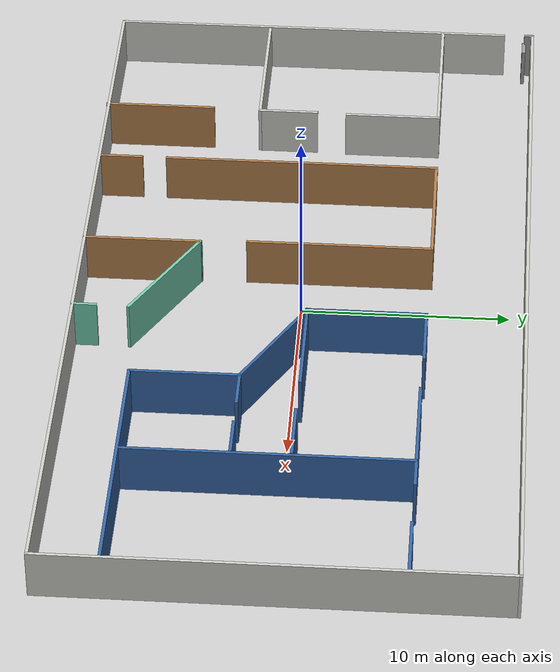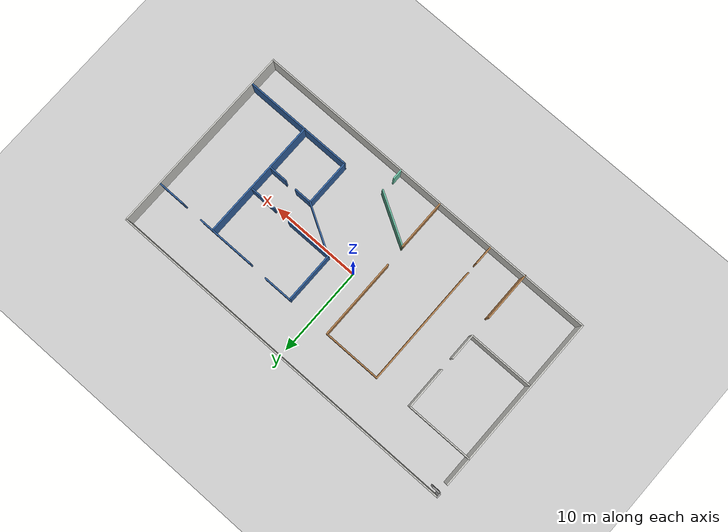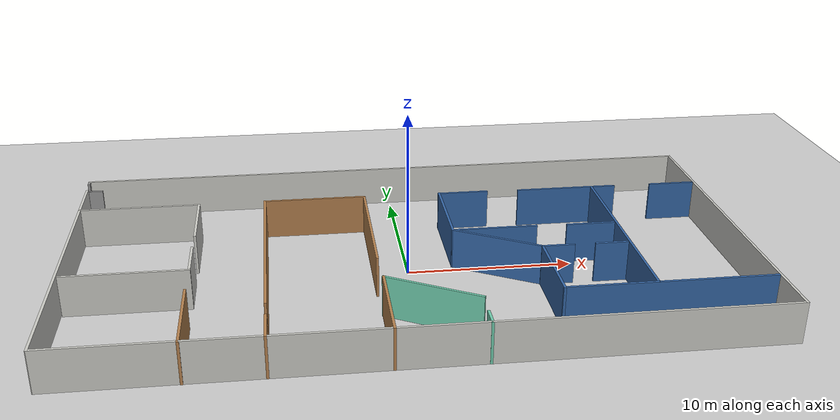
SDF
<sdf version="1.7">
 <world name="default">
  <light name="sun" type="directional">
   <pose>0 0 10 0 -0 0</pose>
   <diffuse>0.8 0.8 0.8 1</diffuse>
   <specular>0.2 0.2 0.2 1</specular>
   <attenuation>
    <range>1000</range>
    <constant>0.9</constant>
    <linear>0.01</linear>
    <quadratic>0.001</quadratic>
   </attenuation>
   <direction>-0.5 0.1 -0.9</direction>
   <spot><inner_angle>0</inner_angle><outer_angle>0</outer_angle><falloff>0</falloff></spot>
  </light>
  <model name="ground_plane">
   <static>1</static>
   <link name="link">
    <collision name="collision">
     <geometry><plane><normal>0 0 1</normal><size>100 100</size></plane></geometry>
     <surface><friction><ode><mu>100</mu><mu2>50</mu2></ode></friction></surface>
    </collision>
    <visual name="visual">
     <cast_shadows>0</cast_shadows>
     <geometry><plane><normal>0 0 1</normal><size>100 100</size></plane></geometry>
     <material>
      <script><uri>file://media/materials/scripts/gazebo.material</uri><name>Gazebo/Grey</name></script>
     </material>
    </visual>
   </link>
  </model>
  <gravity>0 0 -9.8</gravity>
  <magnetic_field>6e-06 2.3e-05 -4.2e-05</magnetic_field>
  <atmosphere type="adiabatic"/>
  <physics type="ode">
   <max_step_size>0.001</max_step_size>
   <real_time_factor>1</real_time_factor>
   <real_time_update_rate>1000</real_time_update_rate>
  </physics>
  <scene><ambient>0.4 0.4 0.4 1</ambient><background>0.7 0.7 0.7 1</background><shadows>1</shadows></scene>
  <spherical_coordinates>
   <surface_model>EARTH_WGS84</surface_model>
   <latitude_deg>0</latitude_deg>
   <longitude_deg>0</longitude_deg>
   <elevation>0</elevation>
   <heading_deg>0</heading_deg>
  </spherical_coordinates>
  <model name="shub">
   <pose>-0.04794 0.053458 0 0 -0 0</pose>
   <link name="Door_0">
    <collision name="Door_0_Collision">
     <geometry><box><size>0.9 0.17 2</size></box></geometry>
     <pose>0 0 1 0 -0 0</pose>
    </collision>
    <visual name="Door_0_Visual">
     <pose>0 0 1 0 -0 0</pose>
     <geometry><box><size>0.9 0.17 2</size></box></geometry>
     <material>
      <script><uri>file://media/materials/scripts/gazebo.material</uri><name>Gazebo/Grey</name></script>
     </material>
    </visual>
    <pose>-19.5315 10.2669 0 0 -0 0</pose>
   </link>
   <link name="Wall_0">
    <collision name="Wall_0_Collision">
     <geometry><box><size>20 0.15 2.5</size></box></geometry>
     <pose>0 0 1.25 0 -0 0</pose>
    </collision>
    <visual name="Wall_0_Visual">
     <pose>0 0 1.25 0 -0 0</pose>
     <geometry><box><size>20 0.15 2.5</size></box></geometry>
     <material>
      <script><uri>file://media/materials/scripts/gazebo.material</uri><name>Gazebo/CeilingTiled</name></script>
      <ambient>1 1 1 1</ambient>
     </material>
     <meta><layer>0</layer></meta>
    </visual>
    <pose>-19.8898 -0.728475 0 0 -0 -1.5708</pose>
   </link>
   <link name="Wall_1">
    <collision name="Wall_1_Collision">
     <geometry><box><size>39.9296 0.15 2.5</size></box></geometry>
     <pose>0 0 1.25 0 -0 0</pose>
    </collision>
    <visual name="Wall_1_Visual">
     <pose>0 0 1.25 0 -0 0</pose>
     <geometry><box><size>39.9296 0.15 2.5</size></box></geometry>
     <material>
      <script><uri>file://media/materials/scripts/gazebo.material</uri><name>Gazebo/CeilingTiled</name></script>
      <ambient>1 1 1 1</ambient>
     </material>
     <meta><layer>0</layer></meta>
    </visual>
    <pose>0.035178 -10.6535 0 0 -0 0</pose>
   </link>
   <link name="Wall_13">
    <collision name="Wall_13_Collision">
     <geometry><box><size>7.5 0.15 2.5</size></box></geometry>
     <pose>0 0 1.25 0 -0 0</pose>
    </collision>
    <visual name="Wall_13_Visual">
     <pose>0 0 1.25 0 -0 0</pose>
     <geometry><box><size>7.5 0.15 2.5</size></box></geometry>
     <material>
      <script><uri>file://media/materials/scripts/gazebo.material</uri><name>Gazebo/CeilingTiled</name></script>
      <ambient>0.996078 0.47451 0.0196078 1</ambient>
     </material>
     <meta><layer>0</layer></meta>
    </visual>
    <pose>-16.1979 6.05021 0 0 -0 0</pose>
   </link>
   <link name="Wall_14">
    <collision name="Wall_14_Collision">
     <geometry><box><size>4.75 0.15 2.5</size></box></geometry>
     <pose>0 0 1.25 0 -0 0</pose>
    </collision>
    <visual name="Wall_14_Visual">
     <pose>0 0 1.25 0 -0 0</pose>
     <geometry><box><size>4.75 0.15 2.5</size></box></geometry>
     <material>
      <script><uri>file://media/materials/scripts/gazebo.material</uri><name>Gazebo/CeilingTiled</name></script>
      <ambient>0.996078 0.47451 0.0196078 1</ambient>
     </material>
     <meta><layer>0</layer></meta>
    </visual>
    <pose>-12.5229 3.75021 0 0 -0 -1.5708</pose>
   </link>
   <link name="Wall_2">
    <collision name="Wall_2_Collision">
     <geometry><box><size>21.5 0.15 2.5</size></box></geometry>
     <pose>0 0 1.25 0 -0 0</pose>
    </collision>
    <visual name="Wall_2_Visual">
     <pose>0 0 1.25 0 -0 0</pose>
     <geometry><box><size>21.5 0.15 2.5</size></box></geometry>
     <material>
      <script><uri>file://media/materials/scripts/gazebo.material</uri><name>Gazebo/CeilingTiled</name></script>
      <ambient>1 1 1 1</ambient>
     </material>
     <meta><layer>0</layer></meta>
    </visual>
    <pose>19.925 0.021525 0 0 -0 1.5708</pose>
   </link>
   <link name="Wall_23">
    <collision name="Wall_23_Collision">
     <geometry><box><size>3 0.15 2.5</size></box></geometry>
     <pose>0 0 1.25 0 -0 0</pose>
    </collision>
    <visual name="Wall_23_Visual">
     <pose>0 0 1.25 0 -0 0</pose>
     <geometry><box><size>3 0.15 2.5</size></box></geometry>
     <material>
      <script><uri>file://media/materials/scripts/gazebo.material</uri><name>Gazebo/CeilingTiled</name></script>
      <ambient>0.996078 0.47451 0.0196078 1</ambient>
     </material>
     <meta><layer>0</layer></meta>
    </visual>
    <pose>-12.5911 -1.53536 0 0 -0 -1.5708</pose>
   </link>
   <link name="Wall_24">
    <collision name="Wall_24_Collision">
     <geometry><box><size>7.25 0.15 2.5</size></box></geometry>
     <pose>0 0 1.25 0 -0 0</pose>
    </collision>
    <visual name="Wall_24_Visual">
     <pose>0 0 1.25 0 -0 0</pose>
     <geometry><box><size>7.25 0.15 2.5</size></box></geometry>
     <material>
      <script><uri>file://media/materials/scripts/gazebo.material</uri><name>Gazebo/CeilingTiled</name></script>
      <ambient>0.996078 0.47451 0.0196078 1</ambient>
     </material>
     <meta><layer>0</layer></meta>
    </visual>
    <pose>-16.1411 -2.96036 0 0 -0 3.14159</pose>
   </link>
   <link name="Wall_26">
    <collision name="Wall_26_Collision">
     <geometry><box><size>5.5 0.15 2.5</size></box></geometry>
     <pose>0 0 1.25 0 -0 0</pose>
    </collision>
    <visual name="Wall_26_Visual">
     <pose>0 0 1.25 0 -0 0</pose>
     <geometry><box><size>5.5 0.15 2.5</size></box></geometry>
     <material>
      <script><uri>file://media/materials/scripts/gazebo.material</uri><name>Gazebo/Wood</name></script>
      <ambient>1 1 1 1</ambient>
     </material>
     <meta><layer>0</layer></meta>
    </visual>
    <pose>-12.666 -8.02153 0 0 -0 1.5708</pose>
   </link>
   <link name="Wall_28">
    <collision name="Wall_28_Collision">
     <geometry><box><size>2.25 0.15 2.5</size></box></geometry>
     <pose>0 0 1.25 0 -0 0</pose>
    </collision>
    <visual name="Wall_28_Visual">
     <pose>0 0 1.25 0 -0 0</pose>
     <geometry><box><size>2.25 0.15 2.5</size></box></geometry>
     <material>
      <script><uri>file://media/materials/scripts/gazebo.material</uri><name>Gazebo/Wood</name></script>
      <ambient>1 1 1 1</ambient>
     </material>
     <meta><layer>0</layer></meta>
    </visual>
    <pose>-8.37772 -9.60607 0 0 -0 1.5708</pose>
   </link>
   <link name="Wall_3">
    <collision name="Wall_3_Collision">
     <geometry><box><size>40 0.15 2.5</size></box></geometry>
     <pose>0 0 1.25 0 -0 0</pose>
    </collision>
    <visual name="Wall_3_Visual">
     <pose>0 0 1.25 0 -0 0</pose>
     <geometry><box><size>40 0.15 2.5</size></box></geometry>
     <material>
      <script><uri>file://media/materials/scripts/gazebo.material</uri><name>Gazebo/CeilingTiled</name></script>
      <ambient>1 1 1 1</ambient>
     </material>
     <meta><layer>0</layer></meta>
    </visual>
    <pose>-0 10.6965 0 0 -0 3.14159</pose>
   </link>
   <link name="Wall_30">
    <collision name="Wall_30_Collision">
     <geometry><box><size>13.5 0.15 2.5</size></box></geometry>
     <pose>0 0 1.25 0 -0 0</pose>
    </collision>
    <visual name="Wall_30_Visual">
     <pose>0 0 1.25 0 -0 0</pose>
     <geometry><box><size>13.5 0.15 2.5</size></box></geometry>
     <material>
      <script><uri>file://media/materials/scripts/gazebo.material</uri><name>Gazebo/Wood</name></script>
      <ambient>1 1 1 1</ambient>
     </material>
     <meta><layer>0</layer></meta>
    </visual>
    <pose>-8.37772 -0.582802 0 0 -0 1.5708</pose>
   </link>
   <link name="Wall_31">
    <collision name="Wall_31_Collision">
     <geometry><box><size>6.5 0.15 2.5</size></box></geometry>
     <pose>0 0 1.25 0 -0 0</pose>
    </collision>
    <visual name="Wall_31_Visual">
     <pose>0 0 1.25 0 -0 0</pose>
     <geometry><box><size>6.5 0.15 2.5</size></box></geometry>
     <material>
      <script><uri>file://media/materials/scripts/gazebo.material</uri><name>Gazebo/Wood</name></script>
      <ambient>1 1 1 1</ambient>
     </material>
     <meta><layer>0</layer></meta>
    </visual>
    <pose>-5.20272 6.0922 0 0 -0 0</pose>
   </link>
   <link name="Wall_32">
    <collision name="Wall_32_Collision">
     <geometry><box><size>9 0.15 2.5</size></box></geometry>
     <pose>0 0 1.25 0 -0 0</pose>
    </collision>
    <visual name="Wall_32_Visual">
     <pose>0 0 1.25 0 -0 0</pose>
     <geometry><box><size>9 0.15 2.5</size></box></geometry>
     <material>
      <script><uri>file://media/materials/scripts/gazebo.material</uri><name>Gazebo/Wood</name></script>
      <ambient>1 1 1 1</ambient>
     </material>
     <meta><layer>0</layer></meta>
    </visual>
    <pose>-2.02773 1.6672 0 0 -0 -1.5708</pose>
   </link>
   <link name="Wall_34">
    <collision name="Wall_34_Collision">
     <geometry><box><size>5.75 0.15 2.5</size></box></geometry>
     <pose>0 0 1.25 0 -0 0</pose>
    </collision>
    <visual name="Wall_34_Visual">
     <pose>0 0 1.25 0 -0 0</pose>
     <geometry><box><size>5.75 0.15 2.5</size></box></geometry>
     <material>
      <script><uri>file://media/materials/scripts/gazebo.material</uri><name>Gazebo/Wood</name></script>
      <ambient>0.203922 0.396078 0.643137 1</ambient>
     </material>
     <meta><layer>0</layer></meta>
    </visual>
    <pose>-1.90483 -7.85607 0 0 -0 1.5708</pose>
   </link>
   <link name="Wall_35">
    <collision name="Wall_35_Collision">
     <geometry><box><size>6 0.15 2.5</size></box></geometry>
     <pose>0 0 1.25 0 -0 0</pose>
    </collision>
    <visual name="Wall_35_Visual">
     <pose>0 0 1.25 0 -0 0</pose>
     <geometry><box><size>6 0.15 2.5</size></box></geometry>
     <material>
      <script><uri>file://media/materials/scripts/gazebo.material</uri><name>Gazebo/Grey</name></script>
      <ambient>0.435294 0.796078 0.67451 1</ambient>
     </material>
     <meta><layer>0</layer></meta>
    </visual>
    <pose>0.628292 -6.51857 0 0 -0 -0.523599</pose>
   </link>
   <link name="Wall_37">
    <collision name="Wall_37_Collision">
     <geometry><box><size>1.25 0.15 2.5</size></box></geometry>
     <pose>0 0 1.25 0 -0 0</pose>
    </collision>
    <visual name="Wall_37_Visual">
     <pose>0 0 1.25 0 -0 0</pose>
     <geometry><box><size>1.25 0.15 2.5</size></box></geometry>
     <material>
      <script><uri>file://media/materials/scripts/gazebo.material</uri><name>Gazebo/Grey</name></script>
      <ambient>0.435294 0.796078 0.67451 1</ambient>
     </material>
     <meta><layer>0</layer></meta>
    </visual>
    <pose>3.11166 -10.1138 0 0 -0 -1.5708</pose>
   </link>
   <link name="Wall_4">
    <collision name="Wall_4_Collision">
     <geometry><box><size>0.5 0.15 2.5</size></box></geometry>
     <pose>0 0 1.25 0 -0 0</pose>
    </collision>
    <visual name="Wall_4_Visual">
     <pose>0 0 1.25 0 -0 0</pose>
     <geometry><box><size>0.5 0.15 2.5</size></box></geometry>
     <material>
      <script><uri>file://media/materials/scripts/gazebo.material</uri><name>Gazebo/Grey</name></script>
      <ambient>1 1 1 1</ambient>
     </material>
     <meta><layer>0</layer></meta>
    </visual>
    <pose>-19.925 10.5215 0 0 -0 -1.5708</pose>
   </link>
   <link name="Wall_42">
    <collision name="Wall_42_Collision">
     <geometry><box><size>5.75 0.15 2.5</size></box></geometry>
     <pose>0 0 1.25 0 -0 0</pose>
    </collision>
    <visual name="Wall_42_Visual">
     <pose>0 0 1.25 0 -0 0</pose>
     <geometry><box><size>5.75 0.15 2.5</size></box></geometry>
     <material>
      <script><uri>file://media/materials/scripts/gazebo.material</uri><name>Gazebo/Grey</name></script>
      <ambient>0.203922 0.396078 0.643137 1</ambient>
     </material>
     <meta><layer>0</layer></meta>
    </visual>
    <pose>2.84118 3.21163 0 0 -0 -1.5708</pose>
   </link>
   <link name="Wall_43">
    <collision name="Wall_43_Collision">
     <geometry><box><size>5.75 0.15 2.5</size></box></geometry>
     <pose>0 0 1.25 0 -0 0</pose>
    </collision>
    <visual name="Wall_43_Visual">
     <pose>0 0 1.25 0 -0 0</pose>
     <geometry><box><size>5.75 0.15 2.5</size></box></geometry>
     <material>
      <script><uri>file://media/materials/scripts/gazebo.material</uri><name>Gazebo/Grey</name></script>
      <ambient>0.203922 0.396078 0.643137 1</ambient>
     </material>
     <meta><layer>0</layer></meta>
    </visual>
    <pose>5.26605 -0.988372 0 0 -0 -0.523599</pose>
   </link>
   <link name="Wall_44">
    <collision name="Wall_44_Collision">
     <geometry><box><size>5.25 0.15 2.5</size></box></geometry>
     <pose>0 0 1.25 0 -0 0</pose>
    </collision>
    <visual name="Wall_44_Visual">
     <pose>0 0 1.25 0 -0 0</pose>
     <geometry><box><size>5.25 0.15 2.5</size></box></geometry>
     <material>
      <script><uri>file://media/materials/scripts/gazebo.material</uri><name>Gazebo/Grey</name></script>
      <ambient>0.203922 0.396078 0.643137 1</ambient>
     </material>
     <meta><layer>0</layer></meta>
    </visual>
    <pose>7.69092 -4.93837 0 0 -0 -1.5708</pose>
   </link>
   <link name="Wall_45">
    <collision name="Wall_45_Collision">
     <geometry><box><size>12.25 0.15 2.5</size></box></geometry>
     <pose>0 0 1.25 0 -0 0</pose>
    </collision>
    <visual name="Wall_45_Visual">
     <pose>0 0 1.25 0 -0 0</pose>
     <geometry><box><size>12.25 0.15 2.5</size></box></geometry>
     <material>
      <script><uri>file://media/materials/scripts/gazebo.material</uri><name>Gazebo/Grey</name></script>
      <ambient>0.203922 0.396078 0.643137 1</ambient>
     </material>
     <meta><layer>0</layer></meta>
    </visual>
    <pose>13.7409 -7.48837 0 0 -0 0</pose>
   </link>
   <link name="Wall_47">
    <collision name="Wall_47_Collision">
     <geometry><box><size>3.25 0.15 2.5</size></box></geometry>
     <pose>0 0 1.25 0 -0 0</pose>
    </collision>
    <visual name="Wall_47_Visual">
     <pose>0 0 1.25 0 -0 0</pose>
     <geometry><box><size>3.25 0.15 2.5</size></box></geometry>
     <material>
      <script><uri>file://media/materials/scripts/gazebo.material</uri><name>Gazebo/Grey</name></script>
      <ambient>0.203922 0.396078 0.643137 1</ambient>
     </material>
     <meta><layer>0</layer></meta>
    </visual>
    <pose>4.39118 6.01163 0 0 -0 0</pose>
   </link>
   <link name="Wall_49">
    <collision name="Wall_49_Collision">
     <geometry><box><size>6.5 0.15 2.5</size></box></geometry>
     <pose>0 0 1.25 0 -0 0</pose>
    </collision>
    <visual name="Wall_49_Visual">
     <pose>0 0 1.25 0 -0 0</pose>
     <geometry><box><size>6.5 0.15 2.5</size></box></geometry>
     <material>
      <script><uri>file://media/materials/scripts/gazebo.material</uri><name>Gazebo/Grey</name></script>
      <ambient>0.203922 0.396078 0.643137 1</ambient>
     </material>
     <meta><layer>0</layer></meta>
    </visual>
    <pose>11.2627 5.93072 0 0 -0 0</pose>
   </link>
   <link name="Wall_51">
    <collision name="Wall_51_Collision">
     <geometry><box><size>3 0.15 2.5</size></box></geometry>
     <pose>0 0 1.25 0 -0 0</pose>
    </collision>
    <visual name="Wall_51_Visual">
     <pose>0 0 1.25 0 -0 0</pose>
     <geometry><box><size>3 0.15 2.5</size></box></geometry>
     <material>
      <script><uri>file://media/materials/scripts/gazebo.material</uri><name>Gazebo/Grey</name></script>
      <ambient>0.203922 0.396078 0.643137 1</ambient>
     </material>
     <meta><layer>0</layer></meta>
    </visual>
    <pose>18.3725 5.89026 0 0 -0 0</pose>
   </link>
   <link name="Wall_53">
    <collision name="Wall_53_Collision">
     <geometry><box><size>13.5 0.15 2.5</size></box></geometry>
     <pose>0 0 1.25 0 -0 0</pose>
    </collision>
    <visual name="Wall_53_Visual">
     <pose>0 0 1.25 0 -0 0</pose>
     <geometry><box><size>13.5 0.15 2.5</size></box></geometry>
     <material>
      <script><uri>file://media/materials/scripts/gazebo.material</uri><name>Gazebo/Grey</name></script>
      <ambient>0.203922 0.396078 0.643137 1</ambient>
     </material>
     <meta><layer>0</layer></meta>
    </visual>
    <pose>12.9424 -0.784739 0 0 -0 -1.5708</pose>
   </link>
   <link name="Wall_55">
    <collision name="Wall_55_Collision">
     <geometry><box><size>2 0.15 2.5</size></box></geometry>
     <pose>0 0 1.25 0 -0 0</pose>
    </collision>
    <visual name="Wall_55_Visual">
     <pose>0 0 1.25 0 -0 0</pose>
     <geometry><box><size>2 0.15 2.5</size></box></geometry>
     <material>
      <script><uri>file://media/materials/scripts/gazebo.material</uri><name>Gazebo/Grey</name></script>
      <ambient>0.203922 0.396078 0.643137 1</ambient>
     </material>
     <meta><layer>0</layer></meta>
    </visual>
    <pose>8.61592 -2.38837 0 0 -0 0</pose>
   </link>
   <link name="Wall_57">
    <collision name="Wall_57_Collision">
     <geometry><box><size>2 0.15 2.5</size></box></geometry>
     <pose>0 0 1.25 0 -0 0</pose>
    </collision>
    <visual name="Wall_57_Visual">
     <pose>0 0 1.25 0 -0 0</pose>
     <geometry><box><size>2 0.15 2.5</size></box></geometry>
     <material>
      <script><uri>file://media/materials/scripts/gazebo.material</uri><name>Gazebo/Grey</name></script>
      <ambient>0.203922 0.396078 0.643137 1</ambient>
     </material>
     <meta><layer>0</layer></meta>
    </visual>
    <pose>11.8446 -2.40313 0 0 -0 0</pose>
   </link>
   <link name="Wall_59">
    <collision name="Wall_59_Collision">
     <geometry><box><size>5.25 0.15 2.5</size></box></geometry>
     <pose>0 0 1.25 0 -0 0</pose>
    </collision>
    <visual name="Wall_59_Visual">
     <pose>0 0 1.25 0 -0 0</pose>
     <geometry><box><size>5.25 0.15 2.5</size></box></geometry>
     <material>
      <script><uri>file://media/materials/scripts/gazebo.material</uri><name>Gazebo/Grey</name></script>
      <ambient>0.203922 0.396078 0.643137 1</ambient>
     </material>
     <meta><layer>0</layer></meta>
    </visual>
    <pose>5.39118 0.411628 0 0 -0 0</pose>
   </link>
   <link name="Wall_61">
    <collision name="Wall_61_Collision">
     <geometry><box><size>3 0.15 2.5</size></box></geometry>
     <pose>0 0 1.25 0 -0 0</pose>
    </collision>
    <visual name="Wall_61_Visual">
     <pose>0 0 1.25 0 -0 0</pose>
     <geometry><box><size>3 0.15 2.5</size></box></geometry>
     <material>
      <script><uri>file://media/materials/scripts/gazebo.material</uri><name>Gazebo/Grey</name></script>
      <ambient>0.203922 0.396078 0.643137 1</ambient>
     </material>
     <meta><layer>0</layer></meta>
    </visual>
    <pose>11.3332 0.347847 0 0 -0 0</pose>
   </link>
   <static>1</static>
  </model>
 </world>
</sdf>
